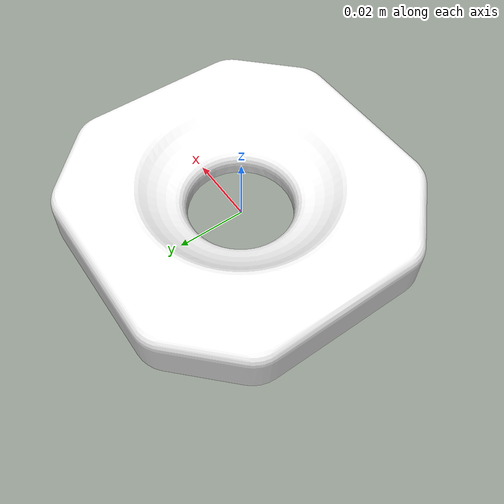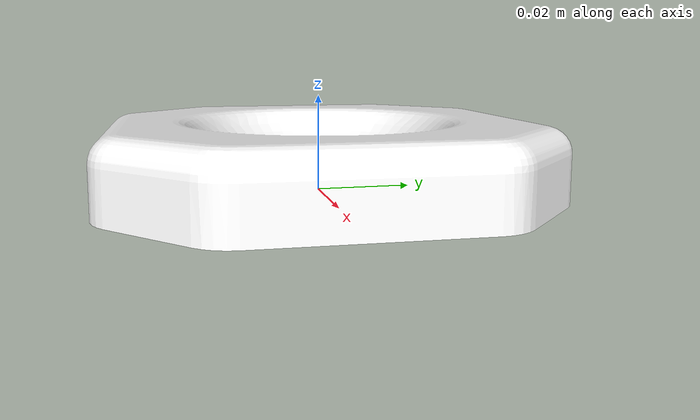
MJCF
<mujoco model="socket_small_0">
  <default>
    <default class="visual">
      <geom group="2" type="mesh" contype="0" conaffinity="0"/>
    </default>
    <default class="collision">
      <geom group="3" type="mesh"/>
    </default>
  </default>
  <asset>
    <material name="white_high_gloss_plastic" specular="1.0" shininess="0.005212761999999999" rgba="1.000000 1.000000 1.000000 1.000000"/>
    <mesh file="socket_small_0/socket_small_0.obj"/>
    <mesh file="socket_small_0/socket_small_0_collision_0.obj"/>
    <mesh file="socket_small_0/socket_small_0_collision_1.obj"/>
    <mesh file="socket_small_0/socket_small_0_collision_2.obj"/>
    <mesh file="socket_small_0/socket_small_0_collision_3.obj"/>
    <mesh file="socket_small_0/socket_small_0_collision_4.obj"/>
    <mesh file="socket_small_0/socket_small_0_collision_5.obj"/>
    <mesh file="socket_small_0/socket_small_0_collision_6.obj"/>
    <mesh file="socket_small_0/socket_small_0_collision_7.obj"/>
    <mesh file="socket_small_0/socket_small_0_collision_8.obj"/>
    <mesh file="socket_small_0/socket_small_0_collision_9.obj"/>
    <mesh file="socket_small_0/socket_small_0_collision_10.obj"/>
    <mesh file="socket_small_0/socket_small_0_collision_11.obj"/>
    <mesh file="socket_small_0/socket_small_0_collision_12.obj"/>
    <mesh file="socket_small_0/socket_small_0_collision_13.obj"/>
    <mesh file="socket_small_0/socket_small_0_collision_14.obj"/>
    <mesh file="socket_small_0/socket_small_0_collision_15.obj"/>
    <mesh file="socket_small_0/socket_small_0_collision_16.obj"/>
    <mesh file="socket_small_0/socket_small_0_collision_17.obj"/>
    <mesh file="socket_small_0/socket_small_0_collision_18.obj"/>
    <mesh file="socket_small_0/socket_small_0_collision_19.obj"/>
    <mesh file="socket_small_0/socket_small_0_collision_20.obj"/>
    <mesh file="socket_small_0/socket_small_0_collision_21.obj"/>
    <mesh file="socket_small_0/socket_small_0_collision_22.obj"/>
    <mesh file="socket_small_0/socket_small_0_collision_23.obj"/>
    <mesh file="socket_small_0/socket_small_0_collision_24.obj"/>
    <mesh file="socket_small_0/socket_small_0_collision_25.obj"/>
  </asset>
  <worldbody>
    <body name="socket_small_0">
      <geom material="white_high_gloss_plastic" mesh="socket_small_0" class="visual"/>
      <geom mesh="socket_small_0_collision_0" rgba="0.5134215936322962 0.9728319518764871 0.5037133935006493 1" class="collision"/>
      <geom mesh="socket_small_0_collision_1" rgba="0.7697808117309451 0.8993382089862686 0.394792775865334 1" class="collision"/>
      <geom mesh="socket_small_0_collision_2" rgba="0.1384367390466722 0.5940849381446638 0.6915921278127515 1" class="collision"/>
      <geom mesh="socket_small_0_collision_3" rgba="0.23562883692216963 0.1943013660959707 0.4853376220945813 1" class="collision"/>
      <geom mesh="socket_small_0_collision_4" rgba="0.3325600871669888 0.43429336676881947 0.8020678841191728 1" class="collision"/>
      <geom mesh="socket_small_0_collision_5" rgba="0.1385579547173711 0.9163649429063877 0.4752317634051859 1" class="collision"/>
      <geom mesh="socket_small_0_collision_6" rgba="0.5434287420121194 0.5586088042169497 0.6988951220314311 1" class="collision"/>
      <geom mesh="socket_small_0_collision_7" rgba="0.3394379024258751 0.637382209105587 0.9689123616095259 1" class="collision"/>
      <geom mesh="socket_small_0_collision_8" rgba="0.775455698077836 0.2749944574919675 0.6306361019079595 1" class="collision"/>
      <geom mesh="socket_small_0_collision_9" rgba="0.7758370051723845 0.5814449226462381 0.7033848542148531 1" class="collision"/>
      <geom mesh="socket_small_0_collision_10" rgba="0.46004650033431016 0.7503607716031783 0.2087718555843845 1" class="collision"/>
      <geom mesh="socket_small_0_collision_11" rgba="0.8437888499340135 0.5999388253358415 0.6220824398397903 1" class="collision"/>
      <geom mesh="socket_small_0_collision_12" rgba="0.6485632045137717 0.2748156696735381 0.35367907657983977 1" class="collision"/>
      <geom mesh="socket_small_0_collision_13" rgba="0.8410618628739438 0.9765414441036829 0.8237486508098352 1" class="collision"/>
      <geom mesh="socket_small_0_collision_14" rgba="0.2248561348843846 0.3116719785147818 0.47566905164940376 1" class="collision"/>
      <geom mesh="socket_small_0_collision_15" rgba="0.1192490308427 0.3609982995608262 0.8699085294937182 1" class="collision"/>
      <geom mesh="socket_small_0_collision_16" rgba="0.04094842672443988 0.4370379849045539 0.7963901292428 1" class="collision"/>
      <geom mesh="socket_small_0_collision_17" rgba="0.4623162133380161 0.6096421362155805 0.47887644863548995 1" class="collision"/>
      <geom mesh="socket_small_0_collision_18" rgba="0.7037931700997908 0.1300434339970007 0.9345446292309308 1" class="collision"/>
      <geom mesh="socket_small_0_collision_19" rgba="0.6667644622456952 0.11134543986310197 0.8895045601412808 1" class="collision"/>
      <geom mesh="socket_small_0_collision_20" rgba="0.6085489224442807 0.2854304631503445 0.711574402569231 1" class="collision"/>
      <geom mesh="socket_small_0_collision_21" rgba="0.141263362178767 0.4678157746902497 0.14646797323759286 1" class="collision"/>
      <geom mesh="socket_small_0_collision_22" rgba="0.7724667071352888 0.9872085887447278 0.01920025813553905 1" class="collision"/>
      <geom mesh="socket_small_0_collision_23" rgba="0.41658736395326923 0.47160166827627314 0.7319536919760508 1" class="collision"/>
      <geom mesh="socket_small_0_collision_24" rgba="0.3218366836463754 0.1227459184669506 0.03206637510679555 1" class="collision"/>
      <geom mesh="socket_small_0_collision_25" rgba="0.7999881995670878 0.4915897659085414 0.9443863860445201 1" class="collision"/>
    </body>
  </worldbody>
</mujoco>
